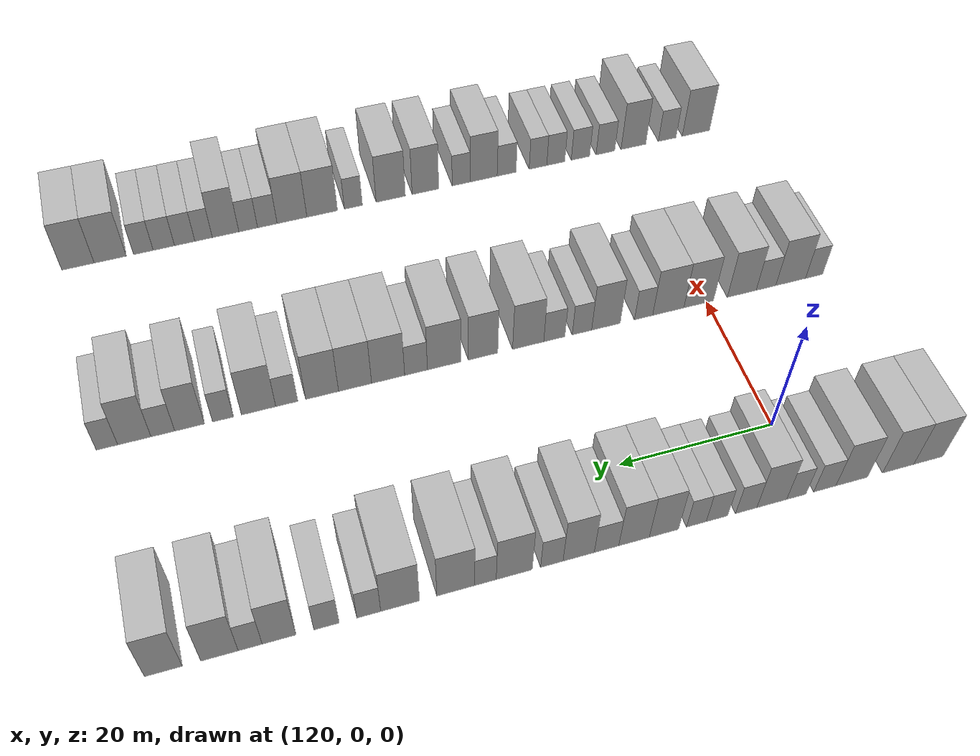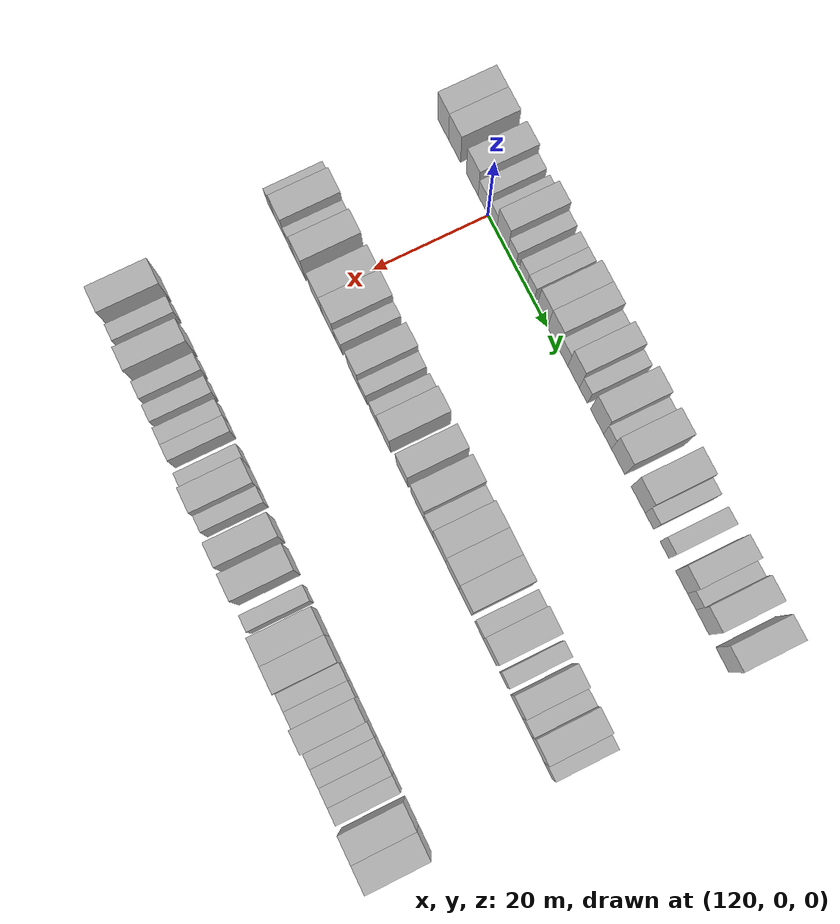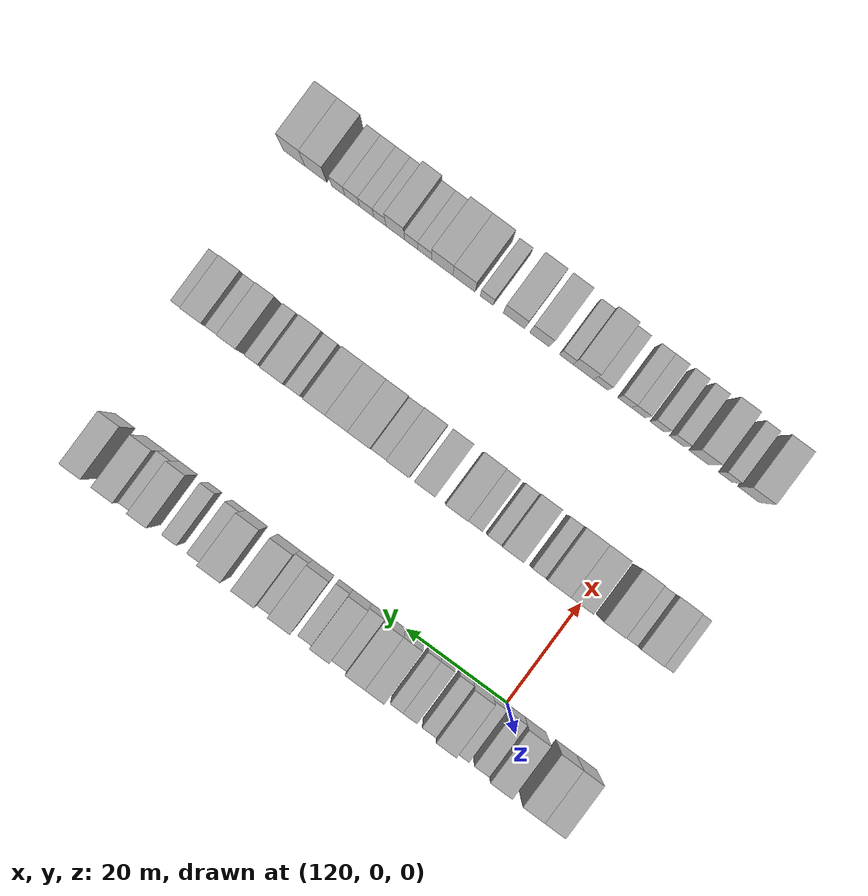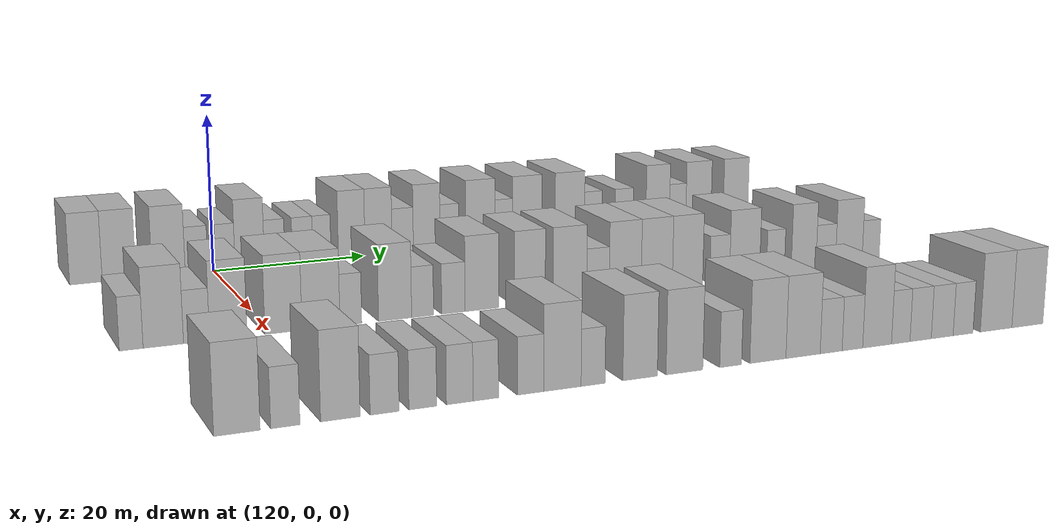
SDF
<sdf version="1.6">
 <world name="default">
  <model name="building_796">
   <static>1</static>
   <pose>115.0000 -15.9276 0 0.000000 0.000000 0.000000</pose>
   <link name="link">
    <pose>0 0 4.50 0 0 0</pose>
    <collision name="collision"><geometry><box><size>10.0000 3.9625 9.0000</size></box></geometry></collision>
    <visual name="visual">
     <cast_shadows>0</cast_shadows>
     <geometry><box><size>10.0000 3.9625 9.0000</size></box></geometry>
     <material>
      <script>
       <uri>model://HANNAS_wall/materials/scripts</uri>
       <uri>model://HANNAS_wall/materials/textures</uri>
       <name>vrc/HANNAS_wall</name>
      </script>
     </material>
    </visual>
   </link>
  </model>
  <model name="building_797">
   <static>1</static>
   <pose>115.0000 -11.8660 0 0.000000 0.000000 0.000000</pose>
   <link name="link">
    <pose>0 0 4.50 0 0 0</pose>
    <collision name="collision"><geometry><box><size>10.0000 4.1607 9.0000</size></box></geometry></collision>
    <visual name="visual">
     <cast_shadows>0</cast_shadows>
     <geometry><box><size>10.0000 4.1607 9.0000</size></box></geometry>
     <material>
      <script>
       <uri>model://HANNAS_wall/materials/scripts</uri>
       <uri>model://HANNAS_wall/materials/textures</uri>
       <name>vrc/HANNAS_wall</name>
      </script>
     </material>
    </visual>
   </link>
  </model>
  <model name="building_798">
   <static>1</static>
   <pose>115.0000 -5.6961 0 0.000000 0.000000 0.000000</pose>
   <link name="link">
    <pose>0 0 4.50 0 0 0</pose>
    <collision name="collision"><geometry><box><size>10.0000 4.1790 9.0000</size></box></geometry></collision>
    <visual name="visual">
     <cast_shadows>0</cast_shadows>
     <geometry><box><size>10.0000 4.1790 9.0000</size></box></geometry>
     <material>
      <script>
       <uri>model://HANNAS_wall/materials/scripts</uri>
       <uri>model://HANNAS_wall/materials/textures</uri>
       <name>vrc/HANNAS_wall</name>
      </script>
     </material>
    </visual>
   </link>
  </model>
  <model name="building_799">
   <static>1</static>
   <pose>115.0000 -2.1554 0 0.000000 0.000000 0.000000</pose>
   <link name="link">
    <pose>0 0 3.00 0 0 0</pose>
    <collision name="collision"><geometry><box><size>10.0000 2.9023 6.0000</size></box></geometry></collision>
    <visual name="visual">
     <cast_shadows>0</cast_shadows>
     <geometry><box><size>10.0000 2.9023 6.0000</size></box></geometry>
     <material>
      <script>
       <uri>model://HANNAS_wall/materials/scripts</uri>
       <uri>model://HANNAS_wall/materials/textures</uri>
       <name>vrc/HANNAS_wall</name>
      </script>
     </material>
    </visual>
   </link>
  </model>
  <model name="building_800">
   <static>1</static>
   <pose>115.0000 1.5456 0 0.000000 0.000000 0.000000</pose>
   <link name="link">
    <pose>0 0 3.00 0 0 0</pose>
    <collision name="collision"><geometry><box><size>10.0000 2.4998 6.0000</size></box></geometry></collision>
    <visual name="visual">
     <cast_shadows>0</cast_shadows>
     <geometry><box><size>10.0000 2.4998 6.0000</size></box></geometry>
     <material>
      <script>
       <uri>model://HANNAS_wall/materials/scripts</uri>
       <uri>model://HANNAS_wall/materials/textures</uri>
       <name>vrc/HANNAS_wall</name>
      </script>
     </material>
    </visual>
   </link>
  </model>
  <model name="building_801">
   <static>1</static>
   <pose>115.0000 4.7154 0 0.000000 0.000000 0.000000</pose>
   <link name="link">
    <pose>0 0 4.50 0 0 0</pose>
    <collision name="collision"><geometry><box><size>10.0000 3.8397 9.0000</size></box></geometry></collision>
    <visual name="visual">
     <cast_shadows>0</cast_shadows>
     <geometry><box><size>10.0000 3.8397 9.0000</size></box></geometry>
     <material>
      <script>
       <uri>model://HANNAS_wall/materials/scripts</uri>
       <uri>model://HANNAS_wall/materials/textures</uri>
       <name>vrc/HANNAS_wall</name>
      </script>
     </material>
    </visual>
   </link>
  </model>
  <model name="building_802">
   <static>1</static>
   <pose>115.0000 7.9928 0 0.000000 0.000000 0.000000</pose>
   <link name="link">
    <pose>0 0 3.00 0 0 0</pose>
    <collision name="collision"><geometry><box><size>10.0000 2.7152 6.0000</size></box></geometry></collision>
    <visual name="visual">
     <cast_shadows>0</cast_shadows>
     <geometry><box><size>10.0000 2.7152 6.0000</size></box></geometry>
     <material>
      <script>
       <uri>model://HANNAS_wall/materials/scripts</uri>
       <uri>model://HANNAS_wall/materials/textures</uri>
       <name>vrc/HANNAS_wall</name>
      </script>
     </material>
    </visual>
   </link>
  </model>
  <model name="building_803">
   <static>1</static>
   <pose>115.0000 11.7067 0 0.000000 0.000000 0.000000</pose>
   <link name="link">
    <pose>0 0 3.00 0 0 0</pose>
    <collision name="collision"><geometry><box><size>10.0000 2.7124 6.0000</size></box></geometry></collision>
    <visual name="visual">
     <cast_shadows>0</cast_shadows>
     <geometry><box><size>10.0000 2.7124 6.0000</size></box></geometry>
     <material>
      <script>
       <uri>model://HANNAS_wall/materials/scripts</uri>
       <uri>model://HANNAS_wall/materials/textures</uri>
       <name>vrc/HANNAS_wall</name>
      </script>
     </material>
    </visual>
   </link>
  </model>
  <model name="building_804">
   <static>1</static>
   <pose>115.0000 14.2987 0 0.000000 0.000000 0.000000</pose>
   <link name="link">
    <pose>0 0 3.00 0 0 0</pose>
    <collision name="collision"><geometry><box><size>10.0000 2.4716 6.0000</size></box></geometry></collision>
    <visual name="visual">
     <cast_shadows>0</cast_shadows>
     <geometry><box><size>10.0000 2.4716 6.0000</size></box></geometry>
     <material>
      <script>
       <uri>model://HANNAS_wall/materials/scripts</uri>
       <uri>model://HANNAS_wall/materials/textures</uri>
       <name>vrc/HANNAS_wall</name>
      </script>
     </material>
    </visual>
   </link>
  </model>
  <model name="building_805">
   <static>1</static>
   <pose>115.0000 18.3568 0 0.000000 0.000000 0.000000</pose>
   <link name="link">
    <pose>0 0 4.50 0 0 0</pose>
    <collision name="collision"><geometry><box><size>10.0000 3.6446 9.0000</size></box></geometry></collision>
    <visual name="visual">
     <cast_shadows>0</cast_shadows>
     <geometry><box><size>10.0000 3.6446 9.0000</size></box></geometry>
     <material>
      <script>
       <uri>model://HANNAS_wall/materials/scripts</uri>
       <uri>model://HANNAS_wall/materials/textures</uri>
       <name>vrc/HANNAS_wall</name>
      </script>
     </material>
    </visual>
   </link>
  </model>
  <model name="building_806">
   <static>1</static>
   <pose>115.0000 22.0596 0 0.000000 0.000000 0.000000</pose>
   <link name="link">
    <pose>0 0 4.50 0 0 0</pose>
    <collision name="collision"><geometry><box><size>10.0000 3.7609 9.0000</size></box></geometry></collision>
    <visual name="visual">
     <cast_shadows>0</cast_shadows>
     <geometry><box><size>10.0000 3.7609 9.0000</size></box></geometry>
     <material>
      <script>
       <uri>model://HANNAS_wall/materials/scripts</uri>
       <uri>model://HANNAS_wall/materials/textures</uri>
       <name>vrc/HANNAS_wall</name>
      </script>
     </material>
    </visual>
   </link>
  </model>
  <model name="building_807">
   <static>1</static>
   <pose>115.0000 25.4334 0 0.000000 0.000000 0.000000</pose>
   <link name="link">
    <pose>0 0 3.00 0 0 0</pose>
    <collision name="collision"><geometry><box><size>10.0000 2.9868 6.0000</size></box></geometry></collision>
    <visual name="visual">
     <cast_shadows>0</cast_shadows>
     <geometry><box><size>10.0000 2.9868 6.0000</size></box></geometry>
     <material>
      <script>
       <uri>model://HANNAS_wall/materials/scripts</uri>
       <uri>model://HANNAS_wall/materials/textures</uri>
       <name>vrc/HANNAS_wall</name>
      </script>
     </material>
    </visual>
   </link>
  </model>
  <model name="building_808">
   <static>1</static>
   <pose>115.0000 28.8162 0 0.000000 0.000000 0.000000</pose>
   <link name="link">
    <pose>0 0 4.50 0 0 0</pose>
    <collision name="collision"><geometry><box><size>10.0000 3.7789 9.0000</size></box></geometry></collision>
    <visual name="visual">
     <cast_shadows>0</cast_shadows>
     <geometry><box><size>10.0000 3.7789 9.0000</size></box></geometry>
     <material>
      <script>
       <uri>model://HANNAS_wall/materials/scripts</uri>
       <uri>model://HANNAS_wall/materials/textures</uri>
       <name>vrc/HANNAS_wall</name>
      </script>
     </material>
    </visual>
   </link>
  </model>
  <model name="building_809">
   <static>1</static>
   <pose>115.0000 32.0507 0 0.000000 0.000000 0.000000</pose>
   <link name="link">
    <pose>0 0 3.00 0 0 0</pose>
    <collision name="collision"><geometry><box><size>10.0000 2.6901 6.0000</size></box></geometry></collision>
    <visual name="visual">
     <cast_shadows>0</cast_shadows>
     <geometry><box><size>10.0000 2.6901 6.0000</size></box></geometry>
     <material>
      <script>
       <uri>model://HANNAS_wall/materials/scripts</uri>
       <uri>model://HANNAS_wall/materials/textures</uri>
       <name>vrc/HANNAS_wall</name>
      </script>
     </material>
    </visual>
   </link>
  </model>
  <model name="building_810">
   <static>1</static>
   <pose>115.0000 36.5402 0 0.000000 0.000000 0.000000</pose>
   <link name="link">
    <pose>0 0 4.50 0 0 0</pose>
    <collision name="collision"><geometry><box><size>10.0000 4.2889 9.0000</size></box></geometry></collision>
    <visual name="visual">
     <cast_shadows>0</cast_shadows>
     <geometry><box><size>10.0000 4.2889 9.0000</size></box></geometry>
     <material>
      <script>
       <uri>model://HANNAS_wall/materials/scripts</uri>
       <uri>model://HANNAS_wall/materials/textures</uri>
       <name>vrc/HANNAS_wall</name>
      </script>
     </material>
    </visual>
   </link>
  </model>
  <model name="building_811">
   <static>1</static>
   <pose>115.0000 39.9533 0 0.000000 0.000000 0.000000</pose>
   <link name="link">
    <pose>0 0 3.00 0 0 0</pose>
    <collision name="collision"><geometry><box><size>10.0000 2.5373 6.0000</size></box></geometry></collision>
    <visual name="visual">
     <cast_shadows>0</cast_shadows>
     <geometry><box><size>10.0000 2.5373 6.0000</size></box></geometry>
     <material>
      <script>
       <uri>model://HANNAS_wall/materials/scripts</uri>
       <uri>model://HANNAS_wall/materials/textures</uri>
       <name>vrc/HANNAS_wall</name>
      </script>
     </material>
    </visual>
   </link>
  </model>
  <model name="building_812">
   <static>1</static>
   <pose>115.0000 43.4267 0 0.000000 0.000000 0.000000</pose>
   <link name="link">
    <pose>0 0 4.50 0 0 0</pose>
    <collision name="collision"><geometry><box><size>10.0000 4.4095 9.0000</size></box></geometry></collision>
    <visual name="visual">
     <cast_shadows>0</cast_shadows>
     <geometry><box><size>10.0000 4.4095 9.0000</size></box></geometry>
     <material>
      <script>
       <uri>model://HANNAS_wall/materials/scripts</uri>
       <uri>model://HANNAS_wall/materials/textures</uri>
       <name>vrc/HANNAS_wall</name>
      </script>
     </material>
    </visual>
   </link>
  </model>
  <model name="building_813">
   <static>1</static>
   <pose>115.0000 49.8557 0 0.000000 0.000000 0.000000</pose>
   <link name="link">
    <pose>0 0 4.50 0 0 0</pose>
    <collision name="collision"><geometry><box><size>10.0000 4.4485 9.0000</size></box></geometry></collision>
    <visual name="visual">
     <cast_shadows>0</cast_shadows>
     <geometry><box><size>10.0000 4.4485 9.0000</size></box></geometry>
     <material>
      <script>
       <uri>model://HANNAS_wall/materials/scripts</uri>
       <uri>model://HANNAS_wall/materials/textures</uri>
       <name>vrc/HANNAS_wall</name>
      </script>
     </material>
    </visual>
   </link>
  </model>
  <model name="building_814">
   <static>1</static>
   <pose>115.0000 53.4362 0 0.000000 0.000000 0.000000</pose>
   <link name="link">
    <pose>0 0 3.00 0 0 0</pose>
    <collision name="collision"><geometry><box><size>10.0000 2.7125 6.0000</size></box></geometry></collision>
    <visual name="visual">
     <cast_shadows>0</cast_shadows>
     <geometry><box><size>10.0000 2.7125 6.0000</size></box></geometry>
     <material>
      <script>
       <uri>model://HANNAS_wall/materials/scripts</uri>
       <uri>model://HANNAS_wall/materials/textures</uri>
       <name>vrc/HANNAS_wall</name>
      </script>
     </material>
    </visual>
   </link>
  </model>
  <model name="building_815">
   <static>1</static>
   <pose>115.0000 58.2143 0 0.000000 0.000000 0.000000</pose>
   <link name="link">
    <pose>0 0 3.00 0 0 0</pose>
    <collision name="collision"><geometry><box><size>10.0000 2.8437 6.0000</size></box></geometry></collision>
    <visual name="visual">
     <cast_shadows>0</cast_shadows>
     <geometry><box><size>10.0000 2.8437 6.0000</size></box></geometry>
     <material>
      <script>
       <uri>model://HANNAS_wall/materials/scripts</uri>
       <uri>model://HANNAS_wall/materials/textures</uri>
       <name>vrc/HANNAS_wall</name>
      </script>
     </material>
    </visual>
   </link>
  </model>
  <model name="building_816">
   <static>1</static>
   <pose>115.0000 63.5076 0 0.000000 0.000000 0.000000</pose>
   <link name="link">
    <pose>0 0 4.50 0 0 0</pose>
    <collision name="collision"><geometry><box><size>10.0000 3.7429 9.0000</size></box></geometry></collision>
    <visual name="visual">
     <cast_shadows>0</cast_shadows>
     <geometry><box><size>10.0000 3.7429 9.0000</size></box></geometry>
     <material>
      <script>
       <uri>model://HANNAS_wall/materials/scripts</uri>
       <uri>model://HANNAS_wall/materials/textures</uri>
       <name>vrc/HANNAS_wall</name>
      </script>
     </material>
    </visual>
   </link>
  </model>
  <model name="building_817">
   <static>1</static>
   <pose>115.0000 66.6981 0 0.000000 0.000000 0.000000</pose>
   <link name="link">
    <pose>0 0 3.00 0 0 0</pose>
    <collision name="collision"><geometry><box><size>10.0000 2.6382 6.0000</size></box></geometry></collision>
    <visual name="visual">
     <cast_shadows>0</cast_shadows>
     <geometry><box><size>10.0000 2.6382 6.0000</size></box></geometry>
     <material>
      <script>
       <uri>model://HANNAS_wall/materials/scripts</uri>
       <uri>model://HANNAS_wall/materials/textures</uri>
       <name>vrc/HANNAS_wall</name>
      </script>
     </material>
    </visual>
   </link>
  </model>
  <model name="building_818">
   <static>1</static>
   <pose>115.0000 70.0573 0 0.000000 0.000000 0.000000</pose>
   <link name="link">
    <pose>0 0 4.50 0 0 0</pose>
    <collision name="collision"><geometry><box><size>10.0000 4.0801 9.0000</size></box></geometry></collision>
    <visual name="visual">
     <cast_shadows>0</cast_shadows>
     <geometry><box><size>10.0000 4.0801 9.0000</size></box></geometry>
     <material>
      <script>
       <uri>model://HANNAS_wall/materials/scripts</uri>
       <uri>model://HANNAS_wall/materials/textures</uri>
       <name>vrc/HANNAS_wall</name>
      </script>
     </material>
    </visual>
   </link>
  </model>
  <model name="building_819">
   <static>1</static>
   <pose>115.0000 76.1280 0 0.000000 0.000000 0.000000</pose>
   <link name="link">
    <pose>0 0 4.50 0 0 0</pose>
    <collision name="collision"><geometry><box><size>10.0000 4.0614 9.0000</size></box></geometry></collision>
    <visual name="visual">
     <cast_shadows>0</cast_shadows>
     <geometry><box><size>10.0000 4.0614 9.0000</size></box></geometry>
     <material>
      <script>
       <uri>model://HANNAS_wall/materials/scripts</uri>
       <uri>model://HANNAS_wall/materials/textures</uri>
       <name>vrc/HANNAS_wall</name>
      </script>
     </material>
    </visual>
   </link>
  </model>
  <model name="building_1022">
   <static>1</static>
   <pose>145.0000 -15.6607 0 0.000000 0.000000 0.000000</pose>
   <link name="link">
    <pose>0 0 3.00 0 0 0</pose>
    <collision name="collision"><geometry><box><size>10.0000 2.5474 6.0000</size></box></geometry></collision>
    <visual name="visual">
     <cast_shadows>0</cast_shadows>
     <geometry><box><size>10.0000 2.5474 6.0000</size></box></geometry>
     <material>
      <script>
       <uri>model://HANNAS_wall/materials/scripts</uri>
       <uri>model://HANNAS_wall/materials/textures</uri>
       <name>vrc/HANNAS_wall</name>
      </script>
     </material>
    </visual>
   </link>
  </model>
  <model name="building_1023">
   <static>1</static>
   <pose>145.0000 -12.1999 0 0.000000 0.000000 0.000000</pose>
   <link name="link">
    <pose>0 0 4.50 0 0 0</pose>
    <collision name="collision"><geometry><box><size>10.0000 4.3742 9.0000</size></box></geometry></collision>
    <visual name="visual">
     <cast_shadows>0</cast_shadows>
     <geometry><box><size>10.0000 4.3742 9.0000</size></box></geometry>
     <material>
      <script>
       <uri>model://HANNAS_wall/materials/scripts</uri>
       <uri>model://HANNAS_wall/materials/textures</uri>
       <name>vrc/HANNAS_wall</name>
      </script>
     </material>
    </visual>
   </link>
  </model>
  <model name="building_1024">
   <static>1</static>
   <pose>145.0000 -8.5780 0 0.000000 0.000000 0.000000</pose>
   <link name="link">
    <pose>0 0 3.00 0 0 0</pose>
    <collision name="collision"><geometry><box><size>10.0000 2.8695 6.0000</size></box></geometry></collision>
    <visual name="visual">
     <cast_shadows>0</cast_shadows>
     <geometry><box><size>10.0000 2.8695 6.0000</size></box></geometry>
     <material>
      <script>
       <uri>model://HANNAS_wall/materials/scripts</uri>
       <uri>model://HANNAS_wall/materials/textures</uri>
       <name>vrc/HANNAS_wall</name>
      </script>
     </material>
    </visual>
   </link>
  </model>
  <model name="building_1025">
   <static>1</static>
   <pose>145.0000 -5.0510 0 0.000000 0.000000 0.000000</pose>
   <link name="link">
    <pose>0 0 4.50 0 0 0</pose>
    <collision name="collision"><geometry><box><size>10.0000 4.1845 9.0000</size></box></geometry></collision>
    <visual name="visual">
     <cast_shadows>0</cast_shadows>
     <geometry><box><size>10.0000 4.1845 9.0000</size></box></geometry>
     <material>
      <script>
       <uri>model://HANNAS_wall/materials/scripts</uri>
       <uri>model://HANNAS_wall/materials/textures</uri>
       <name>vrc/HANNAS_wall</name>
      </script>
     </material>
    </visual>
   </link>
  </model>
  <model name="building_1026">
   <static>1</static>
   <pose>145.0000 1.1613 0 0.000000 0.000000 0.000000</pose>
   <link name="link">
    <pose>0 0 4.50 0 0 0</pose>
    <collision name="collision"><geometry><box><size>10.0000 4.2401 9.0000</size></box></geometry></collision>
    <visual name="visual">
     <cast_shadows>0</cast_shadows>
     <geometry><box><size>10.0000 4.2401 9.0000</size></box></geometry>
     <material>
      <script>
       <uri>model://HANNAS_wall/materials/scripts</uri>
       <uri>model://HANNAS_wall/materials/textures</uri>
       <name>vrc/HANNAS_wall</name>
      </script>
     </material>
    </visual>
   </link>
  </model>
  <model name="building_1027">
   <static>1</static>
   <pose>145.0000 5.4935 0 0.000000 0.000000 0.000000</pose>
   <link name="link">
    <pose>0 0 4.50 0 0 0</pose>
    <collision name="collision"><geometry><box><size>10.0000 4.4244 9.0000</size></box></geometry></collision>
    <visual name="visual">
     <cast_shadows>0</cast_shadows>
     <geometry><box><size>10.0000 4.4244 9.0000</size></box></geometry>
     <material>
      <script>
       <uri>model://HANNAS_wall/materials/scripts</uri>
       <uri>model://HANNAS_wall/materials/textures</uri>
       <name>vrc/HANNAS_wall</name>
      </script>
     </material>
    </visual>
   </link>
  </model>
  <model name="building_1028">
   <static>1</static>
   <pose>145.0000 8.9877 0 0.000000 0.000000 0.000000</pose>
   <link name="link">
    <pose>0 0 3.00 0 0 0</pose>
    <collision name="collision"><geometry><box><size>10.0000 2.5641 6.0000</size></box></geometry></collision>
    <visual name="visual">
     <cast_shadows>0</cast_shadows>
     <geometry><box><size>10.0000 2.5641 6.0000</size></box></geometry>
     <material>
      <script>
       <uri>model://HANNAS_wall/materials/scripts</uri>
       <uri>model://HANNAS_wall/materials/textures</uri>
       <name>vrc/HANNAS_wall</name>
      </script>
     </material>
    </visual>
   </link>
  </model>
  <model name="building_1029">
   <static>1</static>
   <pose>145.0000 14.2597 0 0.000000 0.000000 0.000000</pose>
   <link name="link">
    <pose>0 0 4.50 0 0 0</pose>
    <collision name="collision"><geometry><box><size>10.0000 3.9800 9.0000</size></box></geometry></collision>
    <visual name="visual">
     <cast_shadows>0</cast_shadows>
     <geometry><box><size>10.0000 3.9800 9.0000</size></box></geometry>
     <material>
      <script>
       <uri>model://HANNAS_wall/materials/scripts</uri>
       <uri>model://HANNAS_wall/materials/textures</uri>
       <name>vrc/HANNAS_wall</name>
      </script>
     </material>
    </visual>
   </link>
  </model>
  <model name="building_1030">
   <static>1</static>
   <pose>145.0000 17.5902 0 0.000000 0.000000 0.000000</pose>
   <link name="link">
    <pose>0 0 3.00 0 0 0</pose>
    <collision name="collision"><geometry><box><size>10.0000 2.6810 6.0000</size></box></geometry></collision>
    <visual name="visual">
     <cast_shadows>0</cast_shadows>
     <geometry><box><size>10.0000 2.6810 6.0000</size></box></geometry>
     <material>
      <script>
       <uri>model://HANNAS_wall/materials/scripts</uri>
       <uri>model://HANNAS_wall/materials/textures</uri>
       <name>vrc/HANNAS_wall</name>
      </script>
     </material>
    </visual>
   </link>
  </model>
  <model name="building_1031">
   <static>1</static>
   <pose>145.0000 21.3815 0 0.000000 0.000000 0.000000</pose>
   <link name="link">
    <pose>0 0 3.00 0 0 0</pose>
    <collision name="collision"><geometry><box><size>10.0000 2.9017 6.0000</size></box></geometry></collision>
    <visual name="visual">
     <cast_shadows>0</cast_shadows>
     <geometry><box><size>10.0000 2.9017 6.0000</size></box></geometry>
     <material>
      <script>
       <uri>model://HANNAS_wall/materials/scripts</uri>
       <uri>model://HANNAS_wall/materials/textures</uri>
       <name>vrc/HANNAS_wall</name>
      </script>
     </material>
    </visual>
   </link>
  </model>
  <model name="building_1032">
   <static>1</static>
   <pose>145.0000 24.9526 0 0.000000 0.000000 0.000000</pose>
   <link name="link">
    <pose>0 0 4.50 0 0 0</pose>
    <collision name="collision"><geometry><box><size>10.0000 4.2405 9.0000</size></box></geometry></collision>
    <visual name="visual">
     <cast_shadows>0</cast_shadows>
     <geometry><box><size>10.0000 4.2405 9.0000</size></box></geometry>
     <material>
      <script>
       <uri>model://HANNAS_wall/materials/scripts</uri>
       <uri>model://HANNAS_wall/materials/textures</uri>
       <name>vrc/HANNAS_wall</name>
      </script>
     </material>
    </visual>
   </link>
  </model>
  <model name="building_1033">
   <static>1</static>
   <pose>145.0000 31.0471 0 0.000000 0.000000 0.000000</pose>
   <link name="link">
    <pose>0 0 4.50 0 0 0</pose>
    <collision name="collision"><geometry><box><size>10.0000 3.9484 9.0000</size></box></geometry></collision>
    <visual name="visual">
     <cast_shadows>0</cast_shadows>
     <geometry><box><size>10.0000 3.9484 9.0000</size></box></geometry>
     <material>
      <script>
       <uri>model://HANNAS_wall/materials/scripts</uri>
       <uri>model://HANNAS_wall/materials/textures</uri>
       <name>vrc/HANNAS_wall</name>
      </script>
     </material>
    </visual>
   </link>
  </model>
  <model name="building_1034">
   <static>1</static>
   <pose>145.0000 36.2329 0 0.000000 0.000000 0.000000</pose>
   <link name="link">
    <pose>0 0 4.50 0 0 0</pose>
    <collision name="collision"><geometry><box><size>10.0000 4.4232 9.0000</size></box></geometry></collision>
    <visual name="visual">
     <cast_shadows>0</cast_shadows>
     <geometry><box><size>10.0000 4.4232 9.0000</size></box></geometry>
     <material>
      <script>
       <uri>model://HANNAS_wall/materials/scripts</uri>
       <uri>model://HANNAS_wall/materials/textures</uri>
       <name>vrc/HANNAS_wall</name>
      </script>
     </material>
    </visual>
   </link>
  </model>
  <model name="building_1035">
   <static>1</static>
   <pose>145.0000 39.9379 0 0.000000 0.000000 0.000000</pose>
   <link name="link">
    <pose>0 0 3.00 0 0 0</pose>
    <collision name="collision"><geometry><box><size>10.0000 2.9867 6.0000</size></box></geometry></collision>
    <visual name="visual">
     <cast_shadows>0</cast_shadows>
     <geometry><box><size>10.0000 2.9867 6.0000</size></box></geometry>
     <material>
      <script>
       <uri>model://HANNAS_wall/materials/scripts</uri>
       <uri>model://HANNAS_wall/materials/textures</uri>
       <name>vrc/HANNAS_wall</name>
      </script>
     </material>
    </visual>
   </link>
  </model>
  <model name="building_1036">
   <static>1</static>
   <pose>145.0000 43.5853 0 0.000000 0.000000 0.000000</pose>
   <link name="link">
    <pose>0 0 4.50 0 0 0</pose>
    <collision name="collision"><geometry><box><size>10.0000 4.3080 9.0000</size></box></geometry></collision>
    <visual name="visual">
     <cast_shadows>0</cast_shadows>
     <geometry><box><size>10.0000 4.3080 9.0000</size></box></geometry>
     <material>
      <script>
       <uri>model://HANNAS_wall/materials/scripts</uri>
       <uri>model://HANNAS_wall/materials/textures</uri>
       <name>vrc/HANNAS_wall</name>
      </script>
     </material>
    </visual>
   </link>
  </model>
  <model name="building_1037">
   <static>1</static>
   <pose>145.0000 47.8746 0 0.000000 0.000000 0.000000</pose>
   <link name="link">
    <pose>0 0 4.50 0 0 0</pose>
    <collision name="collision"><geometry><box><size>10.0000 4.2706 9.0000</size></box></geometry></collision>
    <visual name="visual">
     <cast_shadows>0</cast_shadows>
     <geometry><box><size>10.0000 4.2706 9.0000</size></box></geometry>
     <material>
      <script>
       <uri>model://HANNAS_wall/materials/scripts</uri>
       <uri>model://HANNAS_wall/materials/textures</uri>
       <name>vrc/HANNAS_wall</name>
      </script>
     </material>
    </visual>
   </link>
  </model>
  <model name="building_1038">
   <static>1</static>
   <pose>145.0000 52.1167 0 0.000000 0.000000 0.000000</pose>
   <link name="link">
    <pose>0 0 4.50 0 0 0</pose>
    <collision name="collision"><geometry><box><size>10.0000 4.2137 9.0000</size></box></geometry></collision>
    <visual name="visual">
     <cast_shadows>0</cast_shadows>
     <geometry><box><size>10.0000 4.2137 9.0000</size></box></geometry>
     <material>
      <script>
       <uri>model://HANNAS_wall/materials/scripts</uri>
       <uri>model://HANNAS_wall/materials/textures</uri>
       <name>vrc/HANNAS_wall</name>
      </script>
     </material>
    </visual>
   </link>
  </model>
  <model name="building_1039">
   <static>1</static>
   <pose>145.0000 56.6211 0 0.000000 0.000000 0.000000</pose>
   <link name="link">
    <pose>0 0 3.00 0 0 0</pose>
    <collision name="collision"><geometry><box><size>10.0000 2.7950 6.0000</size></box></geometry></collision>
    <visual name="visual">
     <cast_shadows>0</cast_shadows>
     <geometry><box><size>10.0000 2.7950 6.0000</size></box></geometry>
     <material>
      <script>
       <uri>model://HANNAS_wall/materials/scripts</uri>
       <uri>model://HANNAS_wall/materials/textures</uri>
       <name>vrc/HANNAS_wall</name>
      </script>
     </material>
    </visual>
   </link>
  </model>
  <model name="building_1040">
   <static>1</static>
   <pose>145.0000 60.1677 0 0.000000 0.000000 0.000000</pose>
   <link name="link">
    <pose>0 0 4.50 0 0 0</pose>
    <collision name="collision"><geometry><box><size>10.0000 4.2983 9.0000</size></box></geometry></collision>
    <visual name="visual">
     <cast_shadows>0</cast_shadows>
     <geometry><box><size>10.0000 4.2983 9.0000</size></box></geometry>
     <material>
      <script>
       <uri>model://HANNAS_wall/materials/scripts</uri>
       <uri>model://HANNAS_wall/materials/textures</uri>
       <name>vrc/HANNAS_wall</name>
      </script>
     </material>
    </visual>
   </link>
  </model>
  <model name="building_1041">
   <static>1</static>
   <pose>145.0000 64.6153 0 0.000000 0.000000 0.000000</pose>
   <link name="link">
    <pose>0 0 3.00 0 0 0</pose>
    <collision name="collision"><geometry><box><size>10.0000 2.5968 6.0000</size></box></geometry></collision>
    <visual name="visual">
     <cast_shadows>0</cast_shadows>
     <geometry><box><size>10.0000 2.5968 6.0000</size></box></geometry>
     <material>
      <script>
       <uri>model://HANNAS_wall/materials/scripts</uri>
       <uri>model://HANNAS_wall/materials/textures</uri>
       <name>vrc/HANNAS_wall</name>
      </script>
     </material>
    </visual>
   </link>
  </model>
  <model name="building_1042">
   <static>1</static>
   <pose>145.0000 68.7420 0 0.000000 0.000000 0.000000</pose>
   <link name="link">
    <pose>0 0 4.50 0 0 0</pose>
    <collision name="collision"><geometry><box><size>10.0000 3.6568 9.0000</size></box></geometry></collision>
    <visual name="visual">
     <cast_shadows>0</cast_shadows>
     <geometry><box><size>10.0000 3.6568 9.0000</size></box></geometry>
     <material>
      <script>
       <uri>model://HANNAS_wall/materials/scripts</uri>
       <uri>model://HANNAS_wall/materials/textures</uri>
       <name>vrc/HANNAS_wall</name>
      </script>
     </material>
    </visual>
   </link>
  </model>
  <model name="building_1043">
   <static>1</static>
   <pose>145.0000 72.0247 0 0.000000 0.000000 0.000000</pose>
   <link name="link">
    <pose>0 0 3.00 0 0 0</pose>
    <collision name="collision"><geometry><box><size>10.0000 2.9085 6.0000</size></box></geometry></collision>
    <visual name="visual">
     <cast_shadows>0</cast_shadows>
     <geometry><box><size>10.0000 2.9085 6.0000</size></box></geometry>
     <material>
      <script>
       <uri>model://HANNAS_wall/materials/scripts</uri>
       <uri>model://HANNAS_wall/materials/textures</uri>
       <name>vrc/HANNAS_wall</name>
      </script>
     </material>
    </visual>
   </link>
  </model>
  <model name="building_1044">
   <static>1</static>
   <pose>145.0000 75.4931 0 0.000000 0.000000 0.000000</pose>
   <link name="link">
    <pose>0 0 4.50 0 0 0</pose>
    <collision name="collision"><geometry><box><size>10.0000 4.0283 9.0000</size></box></geometry></collision>
    <visual name="visual">
     <cast_shadows>0</cast_shadows>
     <geometry><box><size>10.0000 4.0283 9.0000</size></box></geometry>
     <material>
      <script>
       <uri>model://HANNAS_wall/materials/scripts</uri>
       <uri>model://HANNAS_wall/materials/textures</uri>
       <name>vrc/HANNAS_wall</name>
      </script>
     </material>
    </visual>
   </link>
  </model>
  <model name="building_1045">
   <static>1</static>
   <pose>145.0000 78.8042 0 0.000000 0.000000 0.000000</pose>
   <link name="link">
    <pose>0 0 3.00 0 0 0</pose>
    <collision name="collision"><geometry><box><size>10.0000 2.5938 6.0000</size></box></geometry></collision>
    <visual name="visual">
     <cast_shadows>0</cast_shadows>
     <geometry><box><size>10.0000 2.5938 6.0000</size></box></geometry>
     <material>
      <script>
       <uri>model://HANNAS_wall/materials/scripts</uri>
       <uri>model://HANNAS_wall/materials/textures</uri>
       <name>vrc/HANNAS_wall</name>
      </script>
     </material>
    </visual>
   </link>
  </model>
  <model name="building_1244">
   <static>1</static>
   <pose>175.0000 -11.2362 0 0.000000 0.000000 0.000000</pose>
   <link name="link">
    <pose>0 0 4.50 0 0 0</pose>
    <collision name="collision"><geometry><box><size>10.0000 4.3721 9.0000</size></box></geometry></collision>
    <visual name="visual">
     <cast_shadows>0</cast_shadows>
     <geometry><box><size>10.0000 4.3721 9.0000</size></box></geometry>
     <material>
      <script>
       <uri>model://HANNAS_wall/materials/scripts</uri>
       <uri>model://HANNAS_wall/materials/textures</uri>
       <name>vrc/HANNAS_wall</name>
      </script>
     </material>
    </visual>
   </link>
  </model>
  <model name="building_1245">
   <static>1</static>
   <pose>175.0000 -6.6447 0 0.000000 0.000000 0.000000</pose>
   <link name="link">
    <pose>0 0 3.00 0 0 0</pose>
    <collision name="collision"><geometry><box><size>10.0000 2.8109 6.0000</size></box></geometry></collision>
    <visual name="visual">
     <cast_shadows>0</cast_shadows>
     <geometry><box><size>10.0000 2.8109 6.0000</size></box></geometry>
     <material>
      <script>
       <uri>model://HANNAS_wall/materials/scripts</uri>
       <uri>model://HANNAS_wall/materials/textures</uri>
       <name>vrc/HANNAS_wall</name>
      </script>
     </material>
    </visual>
   </link>
  </model>
  <model name="building_1246">
   <static>1</static>
   <pose>175.0000 -1.2950 0 0.000000 0.000000 0.000000</pose>
   <link name="link">
    <pose>0 0 4.50 0 0 0</pose>
    <collision name="collision"><geometry><box><size>10.0000 3.8886 9.0000</size></box></geometry></collision>
    <visual name="visual">
     <cast_shadows>0</cast_shadows>
     <geometry><box><size>10.0000 3.8886 9.0000</size></box></geometry>
     <material>
      <script>
       <uri>model://HANNAS_wall/materials/scripts</uri>
       <uri>model://HANNAS_wall/materials/textures</uri>
       <name>vrc/HANNAS_wall</name>
      </script>
     </material>
    </visual>
   </link>
  </model>
  <model name="building_1247">
   <static>1</static>
   <pose>175.0000 3.1049 0 0.000000 0.000000 0.000000</pose>
   <link name="link">
    <pose>0 0 3.00 0 0 0</pose>
    <collision name="collision"><geometry><box><size>10.0000 2.9113 6.0000</size></box></geometry></collision>
    <visual name="visual">
     <cast_shadows>0</cast_shadows>
     <geometry><box><size>10.0000 2.9113 6.0000</size></box></geometry>
     <material>
      <script>
       <uri>model://HANNAS_wall/materials/scripts</uri>
       <uri>model://HANNAS_wall/materials/textures</uri>
       <name>vrc/HANNAS_wall</name>
      </script>
     </material>
    </visual>
   </link>
  </model>
  <model name="building_1248">
   <static>1</static>
   <pose>175.0000 6.9856 0 0.000000 0.000000 0.000000</pose>
   <link name="link">
    <pose>0 0 3.00 0 0 0</pose>
    <collision name="collision"><geometry><box><size>10.0000 2.8500 6.0000</size></box></geometry></collision>
    <visual name="visual">
     <cast_shadows>0</cast_shadows>
     <geometry><box><size>10.0000 2.8500 6.0000</size></box></geometry>
     <material>
      <script>
       <uri>model://HANNAS_wall/materials/scripts</uri>
       <uri>model://HANNAS_wall/materials/textures</uri>
       <name>vrc/HANNAS_wall</name>
      </script>
     </material>
    </visual>
   </link>
  </model>
  <model name="building_1249">
   <static>1</static>
   <pose>175.0000 10.7971 0 0.000000 0.000000 0.000000</pose>
   <link name="link">
    <pose>0 0 3.00 0 0 0</pose>
    <collision name="collision"><geometry><box><size>10.0000 2.7731 6.0000</size></box></geometry></collision>
    <visual name="visual">
     <cast_shadows>0</cast_shadows>
     <geometry><box><size>10.0000 2.7731 6.0000</size></box></geometry>
     <material>
      <script>
       <uri>model://HANNAS_wall/materials/scripts</uri>
       <uri>model://HANNAS_wall/materials/textures</uri>
       <name>vrc/HANNAS_wall</name>
      </script>
     </material>
    </visual>
   </link>
  </model>
  <model name="building_1250">
   <static>1</static>
   <pose>175.0000 13.5300 0 0.000000 0.000000 0.000000</pose>
   <link name="link">
    <pose>0 0 3.00 0 0 0</pose>
    <collision name="collision"><geometry><box><size>10.0000 2.6926 6.0000</size></box></geometry></collision>
    <visual name="visual">
     <cast_shadows>0</cast_shadows>
     <geometry><box><size>10.0000 2.6926 6.0000</size></box></geometry>
     <material>
      <script>
       <uri>model://HANNAS_wall/materials/scripts</uri>
       <uri>model://HANNAS_wall/materials/textures</uri>
       <name>vrc/HANNAS_wall</name>
      </script>
     </material>
    </visual>
   </link>
  </model>
  <model name="building_1251">
   <static>1</static>
   <pose>175.0000 18.3118 0 0.000000 0.000000 0.000000</pose>
   <link name="link">
    <pose>0 0 3.00 0 0 0</pose>
    <collision name="collision"><geometry><box><size>10.0000 2.8711 6.0000</size></box></geometry></collision>
    <visual name="visual">
     <cast_shadows>0</cast_shadows>
     <geometry><box><size>10.0000 2.8711 6.0000</size></box></geometry>
     <material>
      <script>
       <uri>model://HANNAS_wall/materials/scripts</uri>
       <uri>model://HANNAS_wall/materials/textures</uri>
       <name>vrc/HANNAS_wall</name>
      </script>
     </material>
    </visual>
   </link>
  </model>
  <model name="building_1252">
   <static>1</static>
   <pose>175.0000 21.7880 0 0.000000 0.000000 0.000000</pose>
   <link name="link">
    <pose>0 0 4.50 0 0 0</pose>
    <collision name="collision"><geometry><box><size>10.0000 4.0812 9.0000</size></box></geometry></collision>
    <visual name="visual">
     <cast_shadows>0</cast_shadows>
     <geometry><box><size>10.0000 4.0812 9.0000</size></box></geometry>
     <material>
      <script>
       <uri>model://HANNAS_wall/materials/scripts</uri>
       <uri>model://HANNAS_wall/materials/textures</uri>
       <name>vrc/HANNAS_wall</name>
      </script>
     </material>
    </visual>
   </link>
  </model>
  <model name="building_1253">
   <static>1</static>
   <pose>175.0000 25.1631 0 0.000000 0.000000 0.000000</pose>
   <link name="link">
    <pose>0 0 3.00 0 0 0</pose>
    <collision name="collision"><geometry><box><size>10.0000 2.6690 6.0000</size></box></geometry></collision>
    <visual name="visual">
     <cast_shadows>0</cast_shadows>
     <geometry><box><size>10.0000 2.6690 6.0000</size></box></geometry>
     <material>
      <script>
       <uri>model://HANNAS_wall/materials/scripts</uri>
       <uri>model://HANNAS_wall/materials/textures</uri>
       <name>vrc/HANNAS_wall</name>
      </script>
     </material>
    </visual>
   </link>
  </model>
  <model name="building_1254">
   <static>1</static>
   <pose>175.0000 30.4640 0 0.000000 0.000000 0.000000</pose>
   <link name="link">
    <pose>0 0 4.50 0 0 0</pose>
    <collision name="collision"><geometry><box><size>10.0000 3.9328 9.0000</size></box></geometry></collision>
    <visual name="visual">
     <cast_shadows>0</cast_shadows>
     <geometry><box><size>10.0000 3.9328 9.0000</size></box></geometry>
     <material>
      <script>
       <uri>model://HANNAS_wall/materials/scripts</uri>
       <uri>model://HANNAS_wall/materials/textures</uri>
       <name>vrc/HANNAS_wall</name>
      </script>
     </material>
    </visual>
   </link>
  </model>
  <model name="building_1255">
   <static>1</static>
   <pose>175.0000 35.5707 0 0.000000 0.000000 0.000000</pose>
   <link name="link">
    <pose>0 0 4.50 0 0 0</pose>
    <collision name="collision"><geometry><box><size>10.0000 4.2805 9.0000</size></box></geometry></collision>
    <visual name="visual">
     <cast_shadows>0</cast_shadows>
     <geometry><box><size>10.0000 4.2805 9.0000</size></box></geometry>
     <material>
      <script>
       <uri>model://HANNAS_wall/materials/scripts</uri>
       <uri>model://HANNAS_wall/materials/textures</uri>
       <name>vrc/HANNAS_wall</name>
      </script>
     </material>
    </visual>
   </link>
  </model>
  <model name="building_1256">
   <static>1</static>
   <pose>175.0000 41.0134 0 0.000000 0.000000 0.000000</pose>
   <link name="link">
    <pose>0 0 3.00 0 0 0</pose>
    <collision name="collision"><geometry><box><size>10.0000 2.6048 6.0000</size></box></geometry></collision>
    <visual name="visual">
     <cast_shadows>0</cast_shadows>
     <geometry><box><size>10.0000 2.6048 6.0000</size></box></geometry>
     <material>
      <script>
       <uri>model://HANNAS_wall/materials/scripts</uri>
       <uri>model://HANNAS_wall/materials/textures</uri>
       <name>vrc/HANNAS_wall</name>
      </script>
     </material>
    </visual>
   </link>
  </model>
  <model name="building_1257">
   <static>1</static>
   <pose>175.0000 45.5106 0 0.000000 0.000000 0.000000</pose>
   <link name="link">
    <pose>0 0 4.50 0 0 0</pose>
    <collision name="collision"><geometry><box><size>10.0000 4.3896 9.0000</size></box></geometry></collision>
    <visual name="visual">
     <cast_shadows>0</cast_shadows>
     <geometry><box><size>10.0000 4.3896 9.0000</size></box></geometry>
     <material>
      <script>
       <uri>model://HANNAS_wall/materials/scripts</uri>
       <uri>model://HANNAS_wall/materials/textures</uri>
       <name>vrc/HANNAS_wall</name>
      </script>
     </material>
    </visual>
   </link>
  </model>
  <model name="building_1258">
   <static>1</static>
   <pose>175.0000 49.8275 0 0.000000 0.000000 0.000000</pose>
   <link name="link">
    <pose>0 0 4.50 0 0 0</pose>
    <collision name="collision"><geometry><box><size>10.0000 4.2442 9.0000</size></box></geometry></collision>
    <visual name="visual">
     <cast_shadows>0</cast_shadows>
     <geometry><box><size>10.0000 4.2442 9.0000</size></box></geometry>
     <material>
      <script>
       <uri>model://HANNAS_wall/materials/scripts</uri>
       <uri>model://HANNAS_wall/materials/textures</uri>
       <name>vrc/HANNAS_wall</name>
      </script>
     </material>
    </visual>
   </link>
  </model>
  <model name="building_1259">
   <static>1</static>
   <pose>175.0000 53.3303 0 0.000000 0.000000 0.000000</pose>
   <link name="link">
    <pose>0 0 3.00 0 0 0</pose>
    <collision name="collision"><geometry><box><size>10.0000 2.7615 6.0000</size></box></geometry></collision>
    <visual name="visual">
     <cast_shadows>0</cast_shadows>
     <geometry><box><size>10.0000 2.7615 6.0000</size></box></geometry>
     <material>
      <script>
       <uri>model://HANNAS_wall/materials/scripts</uri>
       <uri>model://HANNAS_wall/materials/textures</uri>
       <name>vrc/HANNAS_wall</name>
      </script>
     </material>
    </visual>
   </link>
  </model>
  <model name="building_1260">
   <static>1</static>
   <pose>175.0000 56.0214 0 0.000000 0.000000 0.000000</pose>
   <link name="link">
    <pose>0 0 3.00 0 0 0</pose>
    <collision name="collision"><geometry><box><size>10.0000 2.6207 6.0000</size></box></geometry></collision>
    <visual name="visual">
     <cast_shadows>0</cast_shadows>
     <geometry><box><size>10.0000 2.6207 6.0000</size></box></geometry>
     <material>
      <script>
       <uri>model://HANNAS_wall/materials/scripts</uri>
       <uri>model://HANNAS_wall/materials/textures</uri>
       <name>vrc/HANNAS_wall</name>
      </script>
     </material>
    </visual>
   </link>
  </model>
  <model name="building_1261">
   <static>1</static>
   <pose>175.0000 59.1886 0 0.000000 0.000000 0.000000</pose>
   <link name="link">
    <pose>0 0 4.50 0 0 0</pose>
    <collision name="collision"><geometry><box><size>10.0000 3.7137 9.0000</size></box></geometry></collision>
    <visual name="visual">
     <cast_shadows>0</cast_shadows>
     <geometry><box><size>10.0000 3.7137 9.0000</size></box></geometry>
     <material>
      <script>
       <uri>model://HANNAS_wall/materials/scripts</uri>
       <uri>model://HANNAS_wall/materials/textures</uri>
       <name>vrc/HANNAS_wall</name>
      </script>
     </material>
    </visual>
   </link>
  </model>
  <model name="building_1262">
   <static>1</static>
   <pose>175.0000 62.2532 0 0.000000 0.000000 0.000000</pose>
   <link name="link">
    <pose>0 0 3.00 0 0 0</pose>
    <collision name="collision"><geometry><box><size>10.0000 2.4156 6.0000</size></box></geometry></collision>
    <visual name="visual">
     <cast_shadows>0</cast_shadows>
     <geometry><box><size>10.0000 2.4156 6.0000</size></box></geometry>
     <material>
      <script>
       <uri>model://HANNAS_wall/materials/scripts</uri>
       <uri>model://HANNAS_wall/materials/textures</uri>
       <name>vrc/HANNAS_wall</name>
      </script>
     </material>
    </visual>
   </link>
  </model>
  <model name="building_1263">
   <static>1</static>
   <pose>175.0000 64.8668 0 0.000000 0.000000 0.000000</pose>
   <link name="link">
    <pose>0 0 3.00 0 0 0</pose>
    <collision name="collision"><geometry><box><size>10.0000 2.8116 6.0000</size></box></geometry></collision>
    <visual name="visual">
     <cast_shadows>0</cast_shadows>
     <geometry><box><size>10.0000 2.8116 6.0000</size></box></geometry>
     <material>
      <script>
       <uri>model://HANNAS_wall/materials/scripts</uri>
       <uri>model://HANNAS_wall/materials/textures</uri>
       <name>vrc/HANNAS_wall</name>
      </script>
     </material>
    </visual>
   </link>
  </model>
  <model name="building_1264">
   <static>1</static>
   <pose>175.0000 67.7342 0 0.000000 0.000000 0.000000</pose>
   <link name="link">
    <pose>0 0 3.00 0 0 0</pose>
    <collision name="collision"><geometry><box><size>10.0000 2.9232 6.0000</size></box></geometry></collision>
    <visual name="visual">
     <cast_shadows>0</cast_shadows>
     <geometry><box><size>10.0000 2.9232 6.0000</size></box></geometry>
     <material>
      <script>
       <uri>model://HANNAS_wall/materials/scripts</uri>
       <uri>model://HANNAS_wall/materials/textures</uri>
       <name>vrc/HANNAS_wall</name>
      </script>
     </material>
    </visual>
   </link>
  </model>
  <model name="building_1265">
   <static>1</static>
   <pose>175.0000 70.5345 0 0.000000 0.000000 0.000000</pose>
   <link name="link">
    <pose>0 0 3.00 0 0 0</pose>
    <collision name="collision"><geometry><box><size>10.0000 2.6775 6.0000</size></box></geometry></collision>
    <visual name="visual">
     <cast_shadows>0</cast_shadows>
     <geometry><box><size>10.0000 2.6775 6.0000</size></box></geometry>
     <material>
      <script>
       <uri>model://HANNAS_wall/materials/scripts</uri>
       <uri>model://HANNAS_wall/materials/textures</uri>
       <name>vrc/HANNAS_wall</name>
      </script>
     </material>
    </visual>
   </link>
  </model>
  <model name="building_1266">
   <static>1</static>
   <pose>175.0000 75.0398 0 0.000000 0.000000 0.000000</pose>
   <link name="link">
    <pose>0 0 4.50 0 0 0</pose>
    <collision name="collision"><geometry><box><size>10.0000 4.3330 9.0000</size></box></geometry></collision>
    <visual name="visual">
     <cast_shadows>0</cast_shadows>
     <geometry><box><size>10.0000 4.3330 9.0000</size></box></geometry>
     <material>
      <script>
       <uri>model://HANNAS_wall/materials/scripts</uri>
       <uri>model://HANNAS_wall/materials/textures</uri>
       <name>vrc/HANNAS_wall</name>
      </script>
     </material>
    </visual>
   </link>
  </model>
  <model name="building_1267">
   <static>1</static>
   <pose>175.0000 79.3758 0 0.000000 0.000000 0.000000</pose>
   <link name="link">
    <pose>0 0 4.50 0 0 0</pose>
    <collision name="collision"><geometry><box><size>10.0000 4.3390 9.0000</size></box></geometry></collision>
    <visual name="visual">
     <cast_shadows>0</cast_shadows>
     <geometry><box><size>10.0000 4.3390 9.0000</size></box></geometry>
     <material>
      <script>
       <uri>model://HANNAS_wall/materials/scripts</uri>
       <uri>model://HANNAS_wall/materials/textures</uri>
       <name>vrc/HANNAS_wall</name>
      </script>
     </material>
    </visual>
   </link>
  </model>
 </world>
</sdf>
